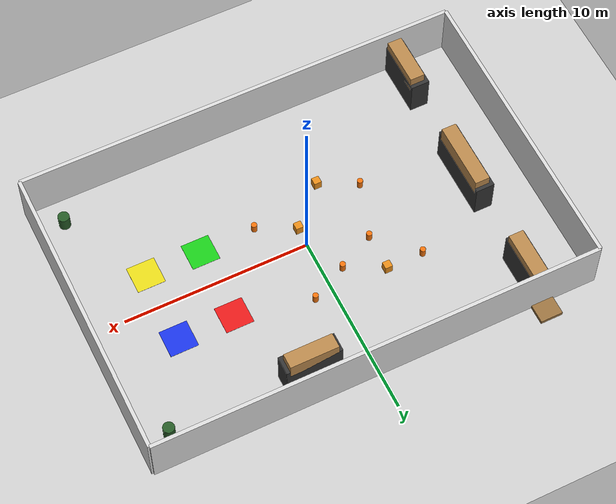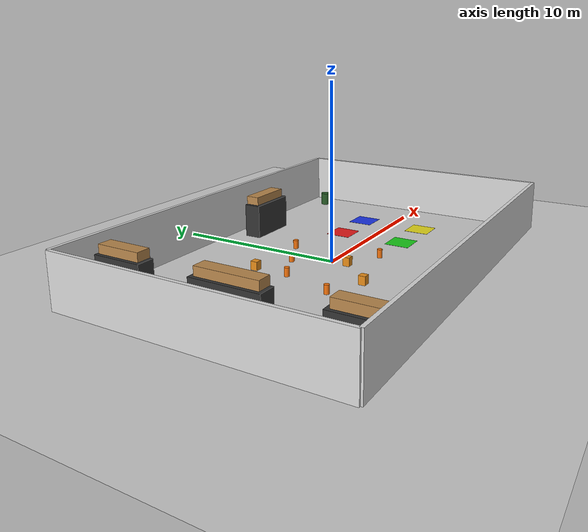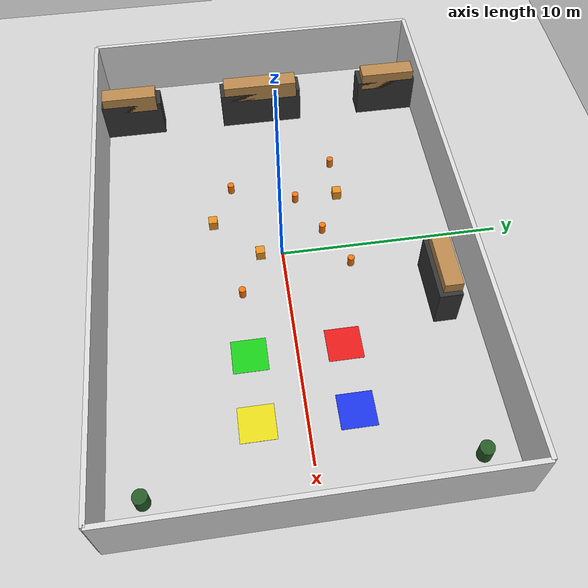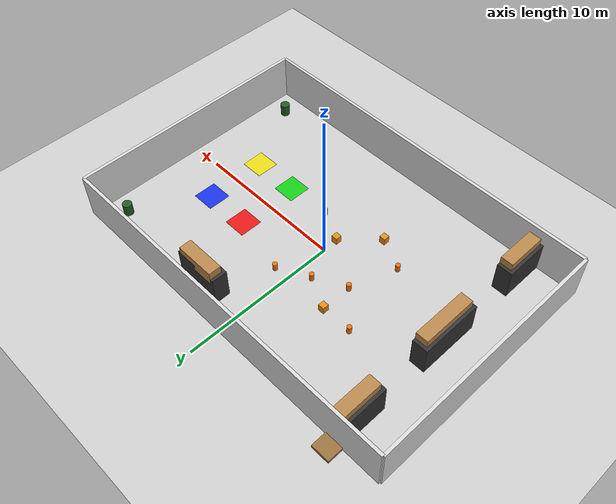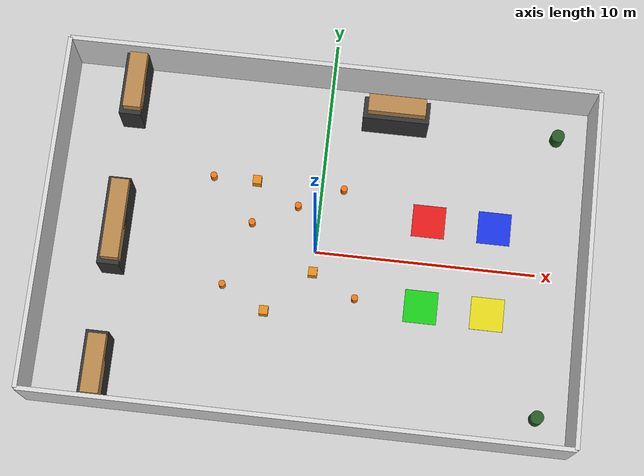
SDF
<?xml version="1.0" ?>
<sdf version="1.9">
  <world name="warehouse">

    <physics name="1ms" type="ode">
      <max_step_size>0.001</max_step_size>
      <real_time_factor>1.0</real_time_factor>
    </physics>

    <plugin filename="gz-sim-physics-system" name="gz::sim::systems::Physics"></plugin>
    <plugin filename="gz-sim-user-commands-system" name="gz::sim::systems::UserCommands"></plugin>
    <plugin filename="gz-sim-scene-broadcaster-system" name="gz::sim::systems::SceneBroadcaster"></plugin>
    <plugin filename="gz-sim-sensors-system" name="gz::sim::systems::Sensors">
      <render_engine>ogre2</render_engine>
    </plugin>

    <light type="directional" name="sun">
      <cast_shadows>true</cast_shadows>
      <pose>0 0 10 0 0 0</pose>
      <diffuse>0.8 0.8 0.8 1</diffuse>
      <specular>0.2 0.2 0.2 1</specular>
      <direction>-0.5 0.1 -0.9</direction>
    </light>

    <model name="ground_plane">
      <static>true</static>
      <link name="link">
        <collision name="collision">
          <geometry><plane><normal>0 0 1</normal><size>24 16</size></plane></geometry>
        </collision>
        <visual name="visual">
          <geometry><plane><normal>0 0 1</normal><size>24 16</size></plane></geometry>
          <material><ambient>0.8 0.8 0.8 1</ambient><diffuse>0.8 0.8 0.8 1</diffuse></material>
        </visual>
      </link>
    </model>

    <model name="wall_north">
      <static>true</static>
      <pose>0 8 1.5 0 0 0</pose>
      <link name="link">
        <collision name="collision"><geometry><box><size>24 0.2 3</size></box></geometry></collision>
        <visual name="visual"><geometry><box><size>24 0.2 3</size></box></geometry>
          <material><ambient>0.85 0.85 0.85 1</ambient><diffuse>0.85 0.85 0.85 1</diffuse></material></visual>
      </link>
    </model>
    <model name="wall_south">
      <static>true</static>
      <pose>0 -8 1.5 0 0 0</pose>
      <link name="link">
        <collision name="collision"><geometry><box><size>24 0.2 3</size></box></geometry></collision>
        <visual name="visual"><geometry><box><size>24 0.2 3</size></box></geometry>
          <material><ambient>0.85 0.85 0.85 1</ambient><diffuse>0.85 0.85 0.85 1</diffuse></material></visual>
      </link>
    </model>
    <model name="wall_east">
      <static>true</static>
      <pose>12 0 1.5 0 0 1.5708</pose>
      <link name="link">
        <collision name="collision"><geometry><box><size>16 0.2 3</size></box></geometry></collision>
        <visual name="visual"><geometry><box><size>16 0.2 3</size></box></geometry>
          <material><ambient>0.85 0.85 0.85 1</ambient><diffuse>0.85 0.85 0.85 1</diffuse></material></visual>
      </link>
    </model>
    <model name="wall_west">
      <static>true</static>
      <pose>-12 0 1.5 0 0 1.5708</pose>
      <link name="link">
        <collision name="collision"><geometry><box><size>16 0.2 3</size></box></geometry></collision>
        <visual name="visual"><geometry><box><size>16 0.2 3</size></box></geometry>
          <material><ambient>0.85 0.85 0.85 1</ambient><diffuse>0.85 0.85 0.85 1</diffuse></material></visual>
      </link>
    </model>

    <!-- ============ PACKAGE SHELF (bot spawns right in front of this) ============ -->
    <model name="shelf_rack_pkg">
      <static>true</static>
      <pose>-9 0 1.0 0 0 0</pose>
      <link name="frame">
        <visual name="frame_visual"><geometry><box><size>1.0 4.0 2.0</size></box></geometry>
          <material><ambient>0.2 0.2 0.2 1</ambient><diffuse>0.2 0.2 0.2 1</diffuse></material></visual>
        <collision name="frame_collision"><geometry><box><size>1.0 4.0 2.0</size></box></geometry></collision>
      </link>
      <link name="boxes">
        <pose>0.1 0 1.05 0 0 0</pose>
        <visual name="boxes_visual"><geometry><box><size>0.8 3.6 0.9</size></box></geometry>
          <material><ambient>0.72 0.53 0.3 1</ambient><diffuse>0.72 0.53 0.3 1</diffuse></material></visual>
      </link>
    </model>

    <!-- ============ CONE OBSTACLE FIELD (between shelf and lots) ============ -->
    <model name="cone_1"><static>true</static><pose>-5 3 0.25 0 0 0</pose>
      <link name="link"><visual name="v"><geometry><cylinder><radius>0.15</radius><length>0.5</length></cylinder></geometry>
        <material><ambient>0.95 0.45 0.05 1</ambient><diffuse>0.95 0.45 0.05 1</diffuse></material></visual>
        <collision name="c"><geometry><cylinder><radius>0.15</radius><length>0.5</length></cylinder></geometry></collision></link></model>

    <model name="cone_2"><static>true</static><pose>-4 -2 0.25 0 0 0</pose>
      <link name="link"><visual name="v"><geometry><cylinder><radius>0.15</radius><length>0.5</length></cylinder></geometry>
        <material><ambient>0.95 0.45 0.05 1</ambient><diffuse>0.95 0.45 0.05 1</diffuse></material></visual>
        <collision name="c"><geometry><cylinder><radius>0.15</radius><length>0.5</length></cylinder></geometry></collision></link></model>

    <model name="cone_3"><static>true</static><pose>-3 1 0.25 0 0 0</pose>
      <link name="link"><visual name="v"><geometry><cylinder><radius>0.15</radius><length>0.5</length></cylinder></geometry>
        <material><ambient>0.95 0.45 0.05 1</ambient><diffuse>0.95 0.45 0.05 1</diffuse></material></visual>
        <collision name="c"><geometry><cylinder><radius>0.15</radius><length>0.5</length></cylinder></geometry></collision></link></model>

    <model name="cone_5"><static>true</static><pose>-1 2 0.25 0 0 0</pose>
      <link name="link"><visual name="v"><geometry><cylinder><radius>0.15</radius><length>0.5</length></cylinder></geometry>
        <material><ambient>0.95 0.45 0.05 1</ambient><diffuse>0.95 0.45 0.05 1</diffuse></material></visual>
        <collision name="c"><geometry><cylinder><radius>0.15</radius><length>0.5</length></cylinder></geometry></collision></link></model>

    <model name="dynamic_obstacle_1">
      <pose>-3 3 0.25 0 0 0</pose>
      <link name="link">
        <inertial><mass>5.0</mass><inertia><ixx>0.05</ixx><iyy>0.05</iyy><izz>0.05</izz><ixy>0</ixy><ixz>0</ixz><iyz>0</iyz></inertia></inertial>
        <visual name="v"><geometry><box><size>0.4 0.4 0.5</size></box></geometry>
          <material><ambient>0.9 0.55 0.1 1</ambient><diffuse>0.9 0.55 0.1 1</diffuse></material></visual>
        <collision name="c"><geometry><box><size>0.4 0.4 0.5</size></box></geometry></collision>
      </link>
      <plugin filename="gz-sim-velocity-control-system" name="gz::sim::systems::VelocityControl">
        <topic>dynamic_obstacle_1/cmd_vel</topic>
      </plugin>
    </model>

    <model name="dynamic_obstacle_2">
      <pose>-2 -3 0.25 0 0 0</pose>
      <link name="link">
        <inertial><mass>5.0</mass><inertia><ixx>0.05</ixx><iyy>0.05</iyy><izz>0.05</izz><ixy>0</ixy><ixz>0</ixz><iyz>0</iyz></inertia></inertial>
        <visual name="v"><geometry><box><size>0.4 0.4 0.5</size></box></geometry>
          <material><ambient>0.9 0.55 0.1 1</ambient><diffuse>0.9 0.55 0.1 1</diffuse></material></visual>
        <collision name="c"><geometry><box><size>0.4 0.4 0.5</size></box></geometry></collision>
      </link>
      <plugin filename="gz-sim-velocity-control-system" name="gz::sim::systems::VelocityControl">
        <topic>dynamic_obstacle_2/cmd_vel</topic>
      </plugin>
    </model>

    <model name="dynamic_obstacle_3">
      <pose>0 -1 0.25 0 0 0</pose>
      <link name="link">
        <inertial><mass>5.0</mass><inertia><ixx>0.05</ixx><iyy>0.05</iyy><izz>0.05</izz><ixy>0</ixy><ixz>0</ixz><iyz>0</iyz></inertia></inertial>
        <visual name="v"><geometry><box><size>0.4 0.4 0.5</size></box></geometry>
          <material><ambient>0.9 0.55 0.1 1</ambient><diffuse>0.9 0.55 0.1 1</diffuse></material></visual>
        <collision name="c"><geometry><box><size>0.4 0.4 0.5</size></box></geometry></collision>
      </link>
      <plugin filename="gz-sim-velocity-control-system" name="gz::sim::systems::VelocityControl">
        <topic>dynamic_obstacle_3/cmd_vel</topic>
      </plugin>
    </model>

    <model name="cone_7"><static>true</static><pose>1 3 0.25 0 0 0</pose>
      <link name="link"><visual name="v"><geometry><cylinder><radius>0.15</radius><length>0.5</length></cylinder></geometry>
        <material><ambient>0.95 0.45 0.05 1</ambient><diffuse>0.95 0.45 0.05 1</diffuse></material></visual>
        <collision name="c"><geometry><cylinder><radius>0.15</radius><length>0.5</length></cylinder></geometry></collision></link></model>

    <model name="cone_8"><static>true</static><pose>2 -2 0.25 0 0 0</pose>
      <link name="link"><visual name="v"><geometry><cylinder><radius>0.15</radius><length>0.5</length></cylinder></geometry>
        <material><ambient>0.95 0.45 0.05 1</ambient><diffuse>0.95 0.45 0.05 1</diffuse></material></visual>
        <collision name="c"><geometry><cylinder><radius>0.15</radius><length>0.5</length></cylinder></geometry></collision></link></model>

    <!-- ============ 4 COLOURED LOTS (destinations) ============ -->
    <model name="red_lot"><static>true</static><pose>5 2 0.01 0 0 0</pose>
      <link name="link"><visual name="visual"><geometry><box><size>1.5 1.5 0.01</size></box></geometry>
        <material><ambient>0.9 0.1 0.1 1</ambient><diffuse>0.9 0.1 0.1 1</diffuse></material></visual></link></model>

    <model name="green_lot"><static>true</static><pose>5 -2 0.01 0 0 0</pose>
      <link name="link"><visual name="visual"><geometry><box><size>1.5 1.5 0.01</size></box></geometry>
        <material><ambient>0.1 0.8 0.1 1</ambient><diffuse>0.1 0.8 0.1 1</diffuse></material></visual></link></model>

    <model name="blue_lot"><static>true</static><pose>8 2 0.01 0 0 0</pose>
      <link name="link"><visual name="visual"><geometry><box><size>1.5 1.5 0.01</size></box></geometry>
        <material><ambient>0.1 0.2 0.9 1</ambient><diffuse>0.1 0.2 0.9 1</diffuse></material></visual></link></model>

    <model name="yellow_lot"><static>true</static><pose>8 -2 0.01 0 0 0</pose>
      <link name="link"><visual name="visual"><geometry><box><size>1.5 1.5 0.01</size></box></geometry>
        <material><ambient>0.9 0.85 0.1 1</ambient><diffuse>0.9 0.85 0.1 1</diffuse></material></visual></link></model>

    <!-- ============ EXTRA SHELF RACKS (warehouse dressing) ============ -->
    <model name="shelf_rack_2">
      <static>true</static>
      <pose>-9 6.5 1.0 0 0 0</pose>
      <link name="frame">
        <visual name="frame_visual"><geometry><box><size>1.0 3.0 2.0</size></box></geometry>
          <material><ambient>0.2 0.2 0.2 1</ambient><diffuse>0.2 0.2 0.2 1</diffuse></material></visual>
        <collision name="frame_collision"><geometry><box><size>1.0 3.0 2.0</size></box></geometry></collision>
      </link>
      <link name="boxes">
        <pose>0.1 0 1.05 0 0 0</pose>
        <visual name="boxes_visual"><geometry><box><size>0.8 2.6 0.9</size></box></geometry>
          <material><ambient>0.72 0.53 0.3 1</ambient><diffuse>0.72 0.53 0.3 1</diffuse></material></visual>
      </link>
    </model>

    <model name="shelf_rack_3">
      <static>true</static>
      <pose>-9 -6.5 1.0 0 0 0</pose>
      <link name="frame">
        <visual name="frame_visual"><geometry><box><size>1.0 3.0 2.0</size></box></geometry>
          <material><ambient>0.2 0.2 0.2 1</ambient><diffuse>0.2 0.2 0.2 1</diffuse></material></visual>
        <collision name="frame_collision"><geometry><box><size>1.0 3.0 2.0</size></box></geometry></collision>
      </link>
      <link name="boxes">
        <pose>0.1 0 1.05 0 0 0</pose>
        <visual name="boxes_visual"><geometry><box><size>0.8 2.6 0.9</size></box></geometry>
          <material><ambient>0.72 0.53 0.3 1</ambient><diffuse>0.72 0.53 0.3 1</diffuse></material></visual>
      </link>
    </model>

    <model name="shelf_rack_4">
      <static>true</static>
      <pose>3 6.5 1.0 0 0 1.5708</pose>
      <link name="frame">
        <visual name="frame_visual"><geometry><box><size>1.0 3.0 2.0</size></box></geometry>
          <material><ambient>0.2 0.2 0.2 1</ambient><diffuse>0.2 0.2 0.2 1</diffuse></material></visual>
        <collision name="frame_collision"><geometry><box><size>1.0 3.0 2.0</size></box></geometry></collision>
      </link>
      <link name="boxes">
        <pose>0.1 0 1.05 0 0 0</pose>
        <visual name="boxes_visual"><geometry><box><size>0.8 2.6 0.9</size></box></geometry>
          <material><ambient>0.72 0.53 0.3 1</ambient><diffuse>0.72 0.53 0.3 1</diffuse></material></visual>
      </link>
    </model>

    <!-- ============ PALLETS & BARRELS (visual dressing, out of the drive corridor) ============ -->
    <model name="pallet_1"><static>true</static><pose>-9 8.6 0.1 0 0 0</pose>
      <link name="link"><visual name="v"><geometry><box><size>1.2 1.0 0.2</size></box></geometry>
        <material><ambient>0.6 0.45 0.25 1</ambient><diffuse>0.6 0.45 0.25 1</diffuse></material></visual>
        <collision name="c"><geometry><box><size>1.2 1.0 0.2</size></box></geometry></collision></link></model>

    <model name="barrel_1"><static>true</static><pose>10.5 6.5 0.4 0 0 0</pose>
      <link name="link"><visual name="v"><geometry><cylinder><radius>0.3</radius><length>0.8</length></cylinder></geometry>
        <material><ambient>0.15 0.35 0.15 1</ambient><diffuse>0.15 0.35 0.15 1</diffuse></material></visual>
        <collision name="c"><geometry><cylinder><radius>0.3</radius><length>0.8</length></cylinder></geometry></collision></link></model>

    <model name="barrel_2"><static>true</static><pose>10.5 -6.5 0.4 0 0 0</pose>
      <link name="link"><visual name="v"><geometry><cylinder><radius>0.3</radius><length>0.8</length></cylinder></geometry>
        <material><ambient>0.15 0.35 0.15 1</ambient><diffuse>0.15 0.35 0.15 1</diffuse></material></visual>
        <collision name="c"><geometry><cylinder><radius>0.3</radius><length>0.8</length></cylinder></geometry></collision></link></model>

  </world>
</sdf>
